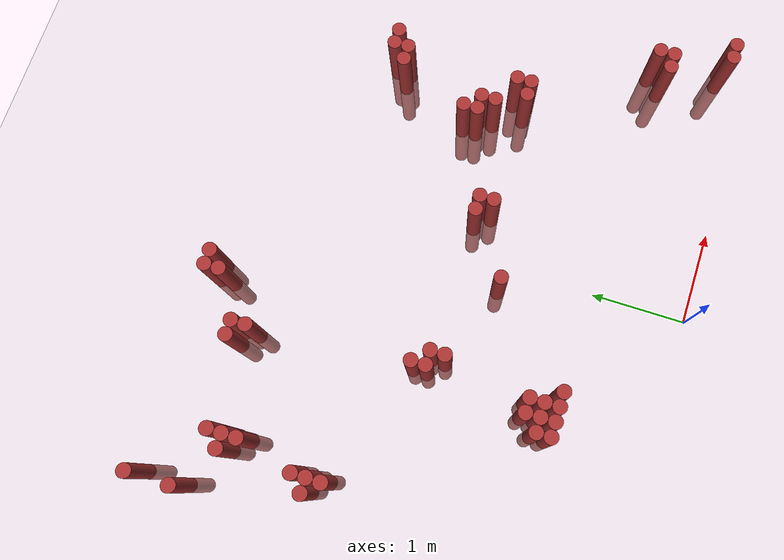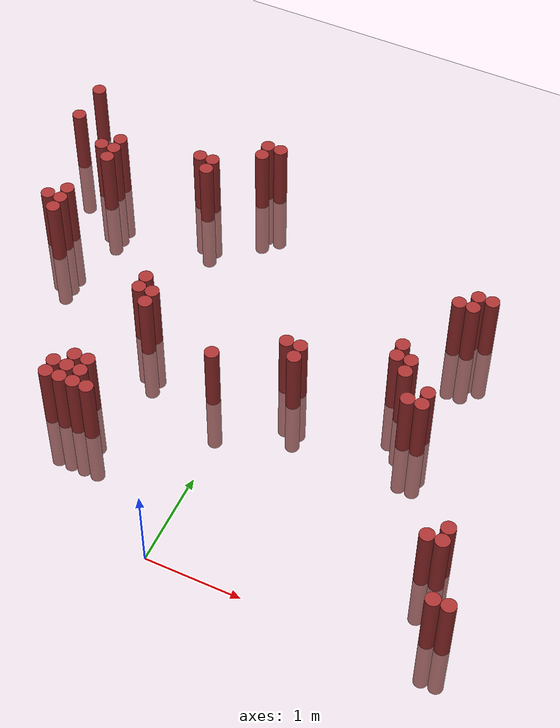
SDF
<sdf version="1.6">
 <world name="default">
  <model name="ground_plane">
   <static>1</static>
   <link name="link">
    <collision name="collision">
     <geometry><plane><normal>0 0 1</normal><size>100 100</size></plane></geometry>
     <surface><friction><ode><mu>100</mu><mu2>50</mu2></ode></friction></surface>
    </collision>
    <visual name="visual">
     <cast_shadows>0</cast_shadows>
     <geometry><plane><normal>0 0 1</normal><size>100 100</size></plane></geometry>
     <material>
      <script><uri>file://media/materials/scripts/gazebo.material</uri><name>Gazebo/Grey</name></script>
     </material>
    </visual>
   </link>
  </model>
  <model name="unit_cylinder_288">
   <static>1</static>
   <pose>-3.125000 4.375000 0.000000 0.000000 0.000000 0.000000</pose>
   <link name="link">
    <inertial>
     <mass>1</mass>
     <inertia><ixx>0.145833</ixx><ixy>0</ixy><ixz>0</ixz><iyy>0.145833</iyy><iyz>0</iyz><izz>0.125</izz></inertia>
    </inertial>
    <collision name="collision">
     <geometry><cylinder><radius>0.075000</radius><length>1.5</length></cylinder></geometry>
    </collision>
    <visual name="visual">
     <geometry><cylinder><radius>0.075000</radius><length>1.5</length></cylinder></geometry>
     <material>
      <ambient>0.648000 0.192000 0.192000 1</ambient>
      <diffuse>0.648000 0.192000 0.192000 1</diffuse>
     </material>
     <material>
      <script><name>Gazebo/Grey</name><uri>file://media/materials/scripts/gazebo.material</uri></script>
     </material>
    </visual>
   </link>
  </model>
  <model name="unit_cylinder_289">
   <static>1</static>
   <pose>-3.125000 4.825000 0.000000 0.000000 0.000000 0.000000</pose>
   <link name="link">
    <inertial>
     <mass>1</mass>
     <inertia><ixx>0.145833</ixx><ixy>0</ixy><ixz>0</ixz><iyy>0.145833</iyy><iyz>0</iyz><izz>0.125</izz></inertia>
    </inertial>
    <collision name="collision">
     <geometry><cylinder><radius>0.075000</radius><length>1.5</length></cylinder></geometry>
    </collision>
    <visual name="visual">
     <geometry><cylinder><radius>0.075000</radius><length>1.5</length></cylinder></geometry>
     <material>
      <ambient>0.648000 0.192000 0.192000 1</ambient>
      <diffuse>0.648000 0.192000 0.192000 1</diffuse>
     </material>
     <material>
      <script><name>Gazebo/Grey</name><uri>file://media/materials/scripts/gazebo.material</uri></script>
     </material>
    </visual>
   </link>
  </model>
  <model name="unit_cylinder_294">
   <static>1</static>
   <pose>-2.825000 3.175000 0.000000 0.000000 0.000000 0.000000</pose>
   <link name="link">
    <inertial>
     <mass>1</mass>
     <inertia><ixx>0.145833</ixx><ixy>0</ixy><ixz>0</ixz><iyy>0.145833</iyy><iyz>0</iyz><izz>0.125</izz></inertia>
    </inertial>
    <collision name="collision">
     <geometry><cylinder><radius>0.075000</radius><length>1.5</length></cylinder></geometry>
    </collision>
    <visual name="visual">
     <geometry><cylinder><radius>0.075000</radius><length>1.5</length></cylinder></geometry>
     <material>
      <ambient>0.648000 0.192000 0.192000 1</ambient>
      <diffuse>0.648000 0.192000 0.192000 1</diffuse>
     </material>
     <material>
      <script><name>Gazebo/Grey</name><uri>file://media/materials/scripts/gazebo.material</uri></script>
     </material>
    </visual>
   </link>
  </model>
  <model name="unit_cylinder_297">
   <static>1</static>
   <pose>-2.675000 3.025000 0.000000 0.000000 0.000000 0.000000</pose>
   <link name="link">
    <inertial>
     <mass>1</mass>
     <inertia><ixx>0.145833</ixx><ixy>0</ixy><ixz>0</ixz><iyy>0.145833</iyy><iyz>0</iyz><izz>0.125</izz></inertia>
    </inertial>
    <collision name="collision">
     <geometry><cylinder><radius>0.075000</radius><length>1.5</length></cylinder></geometry>
    </collision>
    <visual name="visual">
     <geometry><cylinder><radius>0.075000</radius><length>1.5</length></cylinder></geometry>
     <material>
      <ambient>0.648000 0.192000 0.192000 1</ambient>
      <diffuse>0.648000 0.192000 0.192000 1</diffuse>
     </material>
     <material>
      <script><name>Gazebo/Grey</name><uri>file://media/materials/scripts/gazebo.material</uri></script>
     </material>
    </visual>
   </link>
  </model>
  <model name="unit_cylinder_298">
   <static>1</static>
   <pose>-2.675000 3.175000 0.000000 0.000000 0.000000 0.000000</pose>
   <link name="link">
    <inertial>
     <mass>1</mass>
     <inertia><ixx>0.145833</ixx><ixy>0</ixy><ixz>0</ixz><iyy>0.145833</iyy><iyz>0</iyz><izz>0.125</izz></inertia>
    </inertial>
    <collision name="collision">
     <geometry><cylinder><radius>0.075000</radius><length>1.5</length></cylinder></geometry>
    </collision>
    <visual name="visual">
     <geometry><cylinder><radius>0.075000</radius><length>1.5</length></cylinder></geometry>
     <material>
      <ambient>0.648000 0.192000 0.192000 1</ambient>
      <diffuse>0.648000 0.192000 0.192000 1</diffuse>
     </material>
     <material>
      <script><name>Gazebo/Grey</name><uri>file://media/materials/scripts/gazebo.material</uri></script>
     </material>
    </visual>
   </link>
  </model>
  <model name="unit_cylinder_299">
   <static>1</static>
   <pose>-2.675000 3.325000 0.000000 0.000000 0.000000 0.000000</pose>
   <link name="link">
    <inertial>
     <mass>1</mass>
     <inertia><ixx>0.145833</ixx><ixy>0</ixy><ixz>0</ixz><iyy>0.145833</iyy><iyz>0</iyz><izz>0.125</izz></inertia>
    </inertial>
    <collision name="collision">
     <geometry><cylinder><radius>0.075000</radius><length>1.5</length></cylinder></geometry>
    </collision>
    <visual name="visual">
     <geometry><cylinder><radius>0.075000</radius><length>1.5</length></cylinder></geometry>
     <material>
      <ambient>0.648000 0.192000 0.192000 1</ambient>
      <diffuse>0.648000 0.192000 0.192000 1</diffuse>
     </material>
     <material>
      <script><name>Gazebo/Grey</name><uri>file://media/materials/scripts/gazebo.material</uri></script>
     </material>
    </visual>
   </link>
  </model>
  <model name="unit_cylinder_300">
   <static>1</static>
   <pose>-2.675000 4.075000 0.000000 0.000000 0.000000 0.000000</pose>
   <link name="link">
    <inertial>
     <mass>1</mass>
     <inertia><ixx>0.145833</ixx><ixy>0</ixy><ixz>0</ixz><iyy>0.145833</iyy><iyz>0</iyz><izz>0.125</izz></inertia>
    </inertial>
    <collision name="collision">
     <geometry><cylinder><radius>0.075000</radius><length>1.5</length></cylinder></geometry>
    </collision>
    <visual name="visual">
     <geometry><cylinder><radius>0.075000</radius><length>1.5</length></cylinder></geometry>
     <material>
      <ambient>0.648000 0.192000 0.192000 1</ambient>
      <diffuse>0.648000 0.192000 0.192000 1</diffuse>
     </material>
     <material>
      <script><name>Gazebo/Grey</name><uri>file://media/materials/scripts/gazebo.material</uri></script>
     </material>
    </visual>
   </link>
  </model>
  <model name="unit_cylinder_303">
   <static>1</static>
   <pose>-2.525000 3.925000 0.000000 0.000000 0.000000 0.000000</pose>
   <link name="link">
    <inertial>
     <mass>1</mass>
     <inertia><ixx>0.145833</ixx><ixy>0</ixy><ixz>0</ixz><iyy>0.145833</iyy><iyz>0</iyz><izz>0.125</izz></inertia>
    </inertial>
    <collision name="collision">
     <geometry><cylinder><radius>0.075000</radius><length>1.5</length></cylinder></geometry>
    </collision>
    <visual name="visual">
     <geometry><cylinder><radius>0.075000</radius><length>1.5</length></cylinder></geometry>
     <material>
      <ambient>0.648000 0.192000 0.192000 1</ambient>
      <diffuse>0.648000 0.192000 0.192000 1</diffuse>
     </material>
     <material>
      <script><name>Gazebo/Grey</name><uri>file://media/materials/scripts/gazebo.material</uri></script>
     </material>
    </visual>
   </link>
  </model>
  <model name="unit_cylinder_304">
   <static>1</static>
   <pose>-2.525000 4.075000 0.000000 0.000000 0.000000 0.000000</pose>
   <link name="link">
    <inertial>
     <mass>1</mass>
     <inertia><ixx>0.145833</ixx><ixy>0</ixy><ixz>0</ixz><iyy>0.145833</iyy><iyz>0</iyz><izz>0.125</izz></inertia>
    </inertial>
    <collision name="collision">
     <geometry><cylinder><radius>0.075000</radius><length>1.5</length></cylinder></geometry>
    </collision>
    <visual name="visual">
     <geometry><cylinder><radius>0.075000</radius><length>1.5</length></cylinder></geometry>
     <material>
      <ambient>0.648000 0.192000 0.192000 1</ambient>
      <diffuse>0.648000 0.192000 0.192000 1</diffuse>
     </material>
     <material>
      <script><name>Gazebo/Grey</name><uri>file://media/materials/scripts/gazebo.material</uri></script>
     </material>
    </visual>
   </link>
  </model>
  <model name="unit_cylinder_305">
   <static>1</static>
   <pose>-2.525000 4.225000 0.000000 0.000000 0.000000 0.000000</pose>
   <link name="link">
    <inertial>
     <mass>1</mass>
     <inertia><ixx>0.145833</ixx><ixy>0</ixy><ixz>0</ixz><iyy>0.145833</iyy><iyz>0</iyz><izz>0.125</izz></inertia>
    </inertial>
    <collision name="collision">
     <geometry><cylinder><radius>0.075000</radius><length>1.5</length></cylinder></geometry>
    </collision>
    <visual name="visual">
     <geometry><cylinder><radius>0.075000</radius><length>1.5</length></cylinder></geometry>
     <material>
      <ambient>0.648000 0.192000 0.192000 1</ambient>
      <diffuse>0.648000 0.192000 0.192000 1</diffuse>
     </material>
     <material>
      <script><name>Gazebo/Grey</name><uri>file://media/materials/scripts/gazebo.material</uri></script>
     </material>
    </visual>
   </link>
  </model>
  <model name="unit_cylinder_314">
   <static>1</static>
   <pose>-1.625000 1.075000 0.000000 0.000000 0.000000 0.000000</pose>
   <link name="link">
    <inertial>
     <mass>1</mass>
     <inertia><ixx>0.145833</ixx><ixy>0</ixy><ixz>0</ixz><iyy>0.145833</iyy><iyz>0</iyz><izz>0.125</izz></inertia>
    </inertial>
    <collision name="collision">
     <geometry><cylinder><radius>0.075000</radius><length>1.5</length></cylinder></geometry>
    </collision>
    <visual name="visual">
     <geometry><cylinder><radius>0.075000</radius><length>1.5</length></cylinder></geometry>
     <material>
      <ambient>0.648000 0.192000 0.192000 1</ambient>
      <diffuse>0.648000 0.192000 0.192000 1</diffuse>
     </material>
     <material>
      <script><name>Gazebo/Grey</name><uri>file://media/materials/scripts/gazebo.material</uri></script>
     </material>
    </visual>
   </link>
  </model>
  <model name="unit_cylinder_315">
   <static>1</static>
   <pose>-1.625000 1.225000 0.000000 0.000000 0.000000 0.000000</pose>
   <link name="link">
    <inertial>
     <mass>1</mass>
     <inertia><ixx>0.145833</ixx><ixy>0</ixy><ixz>0</ixz><iyy>0.145833</iyy><iyz>0</iyz><izz>0.125</izz></inertia>
    </inertial>
    <collision name="collision">
     <geometry><cylinder><radius>0.075000</radius><length>1.5</length></cylinder></geometry>
    </collision>
    <visual name="visual">
     <geometry><cylinder><radius>0.075000</radius><length>1.5</length></cylinder></geometry>
     <material>
      <ambient>0.648000 0.192000 0.192000 1</ambient>
      <diffuse>0.648000 0.192000 0.192000 1</diffuse>
     </material>
     <material>
      <script><name>Gazebo/Grey</name><uri>file://media/materials/scripts/gazebo.material</uri></script>
     </material>
    </visual>
   </link>
  </model>
  <model name="unit_cylinder_316">
   <static>1</static>
   <pose>-1.625000 4.375000 0.000000 0.000000 0.000000 0.000000</pose>
   <link name="link">
    <inertial>
     <mass>1</mass>
     <inertia><ixx>0.145833</ixx><ixy>0</ixy><ixz>0</ixz><iyy>0.145833</iyy><iyz>0</iyz><izz>0.125</izz></inertia>
    </inertial>
    <collision name="collision">
     <geometry><cylinder><radius>0.075000</radius><length>1.5</length></cylinder></geometry>
    </collision>
    <visual name="visual">
     <geometry><cylinder><radius>0.075000</radius><length>1.5</length></cylinder></geometry>
     <material>
      <ambient>0.648000 0.192000 0.192000 1</ambient>
      <diffuse>0.648000 0.192000 0.192000 1</diffuse>
     </material>
     <material>
      <script><name>Gazebo/Grey</name><uri>file://media/materials/scripts/gazebo.material</uri></script>
     </material>
    </visual>
   </link>
  </model>
  <model name="unit_cylinder_319">
   <static>1</static>
   <pose>-1.475000 1.075000 0.000000 0.000000 0.000000 0.000000</pose>
   <link name="link">
    <inertial>
     <mass>1</mass>
     <inertia><ixx>0.145833</ixx><ixy>0</ixy><ixz>0</ixz><iyy>0.145833</iyy><iyz>0</iyz><izz>0.125</izz></inertia>
    </inertial>
    <collision name="collision">
     <geometry><cylinder><radius>0.075000</radius><length>1.5</length></cylinder></geometry>
    </collision>
    <visual name="visual">
     <geometry><cylinder><radius>0.075000</radius><length>1.5</length></cylinder></geometry>
     <material>
      <ambient>0.648000 0.192000 0.192000 1</ambient>
      <diffuse>0.648000 0.192000 0.192000 1</diffuse>
     </material>
     <material>
      <script><name>Gazebo/Grey</name><uri>file://media/materials/scripts/gazebo.material</uri></script>
     </material>
    </visual>
   </link>
  </model>
  <model name="unit_cylinder_320">
   <static>1</static>
   <pose>-1.475000 1.225000 0.000000 0.000000 0.000000 0.000000</pose>
   <link name="link">
    <inertial>
     <mass>1</mass>
     <inertia><ixx>0.145833</ixx><ixy>0</ixy><ixz>0</ixz><iyy>0.145833</iyy><iyz>0</iyz><izz>0.125</izz></inertia>
    </inertial>
    <collision name="collision">
     <geometry><cylinder><radius>0.075000</radius><length>1.5</length></cylinder></geometry>
    </collision>
    <visual name="visual">
     <geometry><cylinder><radius>0.075000</radius><length>1.5</length></cylinder></geometry>
     <material>
      <ambient>0.648000 0.192000 0.192000 1</ambient>
      <diffuse>0.648000 0.192000 0.192000 1</diffuse>
     </material>
     <material>
      <script><name>Gazebo/Grey</name><uri>file://media/materials/scripts/gazebo.material</uri></script>
     </material>
    </visual>
   </link>
  </model>
  <model name="unit_cylinder_321">
   <static>1</static>
   <pose>-1.475000 1.375000 0.000000 0.000000 0.000000 0.000000</pose>
   <link name="link">
    <inertial>
     <mass>1</mass>
     <inertia><ixx>0.145833</ixx><ixy>0</ixy><ixz>0</ixz><iyy>0.145833</iyy><iyz>0</iyz><izz>0.125</izz></inertia>
    </inertial>
    <collision name="collision">
     <geometry><cylinder><radius>0.075000</radius><length>1.5</length></cylinder></geometry>
    </collision>
    <visual name="visual">
     <geometry><cylinder><radius>0.075000</radius><length>1.5</length></cylinder></geometry>
     <material>
      <ambient>0.648000 0.192000 0.192000 1</ambient>
      <diffuse>0.648000 0.192000 0.192000 1</diffuse>
     </material>
     <material>
      <script><name>Gazebo/Grey</name><uri>file://media/materials/scripts/gazebo.material</uri></script>
     </material>
    </visual>
   </link>
  </model>
  <model name="unit_cylinder_322">
   <static>1</static>
   <pose>-1.475000 4.225000 0.000000 0.000000 0.000000 0.000000</pose>
   <link name="link">
    <inertial>
     <mass>1</mass>
     <inertia><ixx>0.145833</ixx><ixy>0</ixy><ixz>0</ixz><iyy>0.145833</iyy><iyz>0</iyz><izz>0.125</izz></inertia>
    </inertial>
    <collision name="collision">
     <geometry><cylinder><radius>0.075000</radius><length>1.5</length></cylinder></geometry>
    </collision>
    <visual name="visual">
     <geometry><cylinder><radius>0.075000</radius><length>1.5</length></cylinder></geometry>
     <material>
      <ambient>0.648000 0.192000 0.192000 1</ambient>
      <diffuse>0.648000 0.192000 0.192000 1</diffuse>
     </material>
     <material>
      <script><name>Gazebo/Grey</name><uri>file://media/materials/scripts/gazebo.material</uri></script>
     </material>
    </visual>
   </link>
  </model>
  <model name="unit_cylinder_323">
   <static>1</static>
   <pose>-1.475000 4.375000 0.000000 0.000000 0.000000 0.000000</pose>
   <link name="link">
    <inertial>
     <mass>1</mass>
     <inertia><ixx>0.145833</ixx><ixy>0</ixy><ixz>0</ixz><iyy>0.145833</iyy><iyz>0</iyz><izz>0.125</izz></inertia>
    </inertial>
    <collision name="collision">
     <geometry><cylinder><radius>0.075000</radius><length>1.5</length></cylinder></geometry>
    </collision>
    <visual name="visual">
     <geometry><cylinder><radius>0.075000</radius><length>1.5</length></cylinder></geometry>
     <material>
      <ambient>0.648000 0.192000 0.192000 1</ambient>
      <diffuse>0.648000 0.192000 0.192000 1</diffuse>
     </material>
     <material>
      <script><name>Gazebo/Grey</name><uri>file://media/materials/scripts/gazebo.material</uri></script>
     </material>
    </visual>
   </link>
  </model>
  <model name="unit_cylinder_325">
   <static>1</static>
   <pose>-1.325000 1.075000 0.000000 0.000000 0.000000 0.000000</pose>
   <link name="link">
    <inertial>
     <mass>1</mass>
     <inertia><ixx>0.145833</ixx><ixy>0</ixy><ixz>0</ixz><iyy>0.145833</iyy><iyz>0</iyz><izz>0.125</izz></inertia>
    </inertial>
    <collision name="collision">
     <geometry><cylinder><radius>0.075000</radius><length>1.5</length></cylinder></geometry>
    </collision>
    <visual name="visual">
     <geometry><cylinder><radius>0.075000</radius><length>1.5</length></cylinder></geometry>
     <material>
      <ambient>0.648000 0.192000 0.192000 1</ambient>
      <diffuse>0.648000 0.192000 0.192000 1</diffuse>
     </material>
     <material>
      <script><name>Gazebo/Grey</name><uri>file://media/materials/scripts/gazebo.material</uri></script>
     </material>
    </visual>
   </link>
  </model>
  <model name="unit_cylinder_326">
   <static>1</static>
   <pose>-1.325000 1.225000 0.000000 0.000000 0.000000 0.000000</pose>
   <link name="link">
    <inertial>
     <mass>1</mass>
     <inertia><ixx>0.145833</ixx><ixy>0</ixy><ixz>0</ixz><iyy>0.145833</iyy><iyz>0</iyz><izz>0.125</izz></inertia>
    </inertial>
    <collision name="collision">
     <geometry><cylinder><radius>0.075000</radius><length>1.5</length></cylinder></geometry>
    </collision>
    <visual name="visual">
     <geometry><cylinder><radius>0.075000</radius><length>1.5</length></cylinder></geometry>
     <material>
      <ambient>0.648000 0.192000 0.192000 1</ambient>
      <diffuse>0.648000 0.192000 0.192000 1</diffuse>
     </material>
     <material>
      <script><name>Gazebo/Grey</name><uri>file://media/materials/scripts/gazebo.material</uri></script>
     </material>
    </visual>
   </link>
  </model>
  <model name="unit_cylinder_327">
   <static>1</static>
   <pose>-1.325000 1.375000 0.000000 0.000000 0.000000 0.000000</pose>
   <link name="link">
    <inertial>
     <mass>1</mass>
     <inertia><ixx>0.145833</ixx><ixy>0</ixy><ixz>0</ixz><iyy>0.145833</iyy><iyz>0</iyz><izz>0.125</izz></inertia>
    </inertial>
    <collision name="collision">
     <geometry><cylinder><radius>0.075000</radius><length>1.5</length></cylinder></geometry>
    </collision>
    <visual name="visual">
     <geometry><cylinder><radius>0.075000</radius><length>1.5</length></cylinder></geometry>
     <material>
      <ambient>0.648000 0.192000 0.192000 1</ambient>
      <diffuse>0.648000 0.192000 0.192000 1</diffuse>
     </material>
     <material>
      <script><name>Gazebo/Grey</name><uri>file://media/materials/scripts/gazebo.material</uri></script>
     </material>
    </visual>
   </link>
  </model>
  <model name="unit_cylinder_328">
   <static>1</static>
   <pose>-1.325000 2.425000 0.000000 0.000000 0.000000 0.000000</pose>
   <link name="link">
    <inertial>
     <mass>1</mass>
     <inertia><ixx>0.145833</ixx><ixy>0</ixy><ixz>0</ixz><iyy>0.145833</iyy><iyz>0</iyz><izz>0.125</izz></inertia>
    </inertial>
    <collision name="collision">
     <geometry><cylinder><radius>0.075000</radius><length>1.5</length></cylinder></geometry>
    </collision>
    <visual name="visual">
     <geometry><cylinder><radius>0.075000</radius><length>1.5</length></cylinder></geometry>
     <material>
      <ambient>0.648000 0.192000 0.192000 1</ambient>
      <diffuse>0.648000 0.192000 0.192000 1</diffuse>
     </material>
     <material>
      <script><name>Gazebo/Grey</name><uri>file://media/materials/scripts/gazebo.material</uri></script>
     </material>
    </visual>
   </link>
  </model>
  <model name="unit_cylinder_329">
   <static>1</static>
   <pose>-1.325000 2.575000 0.000000 0.000000 0.000000 0.000000</pose>
   <link name="link">
    <inertial>
     <mass>1</mass>
     <inertia><ixx>0.145833</ixx><ixy>0</ixy><ixz>0</ixz><iyy>0.145833</iyy><iyz>0</iyz><izz>0.125</izz></inertia>
    </inertial>
    <collision name="collision">
     <geometry><cylinder><radius>0.075000</radius><length>1.5</length></cylinder></geometry>
    </collision>
    <visual name="visual">
     <geometry><cylinder><radius>0.075000</radius><length>1.5</length></cylinder></geometry>
     <material>
      <ambient>0.648000 0.192000 0.192000 1</ambient>
      <diffuse>0.648000 0.192000 0.192000 1</diffuse>
     </material>
     <material>
      <script><name>Gazebo/Grey</name><uri>file://media/materials/scripts/gazebo.material</uri></script>
     </material>
    </visual>
   </link>
  </model>
  <model name="unit_cylinder_330">
   <static>1</static>
   <pose>-1.175000 1.075000 0.000000 0.000000 0.000000 0.000000</pose>
   <link name="link">
    <inertial>
     <mass>1</mass>
     <inertia><ixx>0.145833</ixx><ixy>0</ixy><ixz>0</ixz><iyy>0.145833</iyy><iyz>0</iyz><izz>0.125</izz></inertia>
    </inertial>
    <collision name="collision">
     <geometry><cylinder><radius>0.075000</radius><length>1.5</length></cylinder></geometry>
    </collision>
    <visual name="visual">
     <geometry><cylinder><radius>0.075000</radius><length>1.5</length></cylinder></geometry>
     <material>
      <ambient>0.648000 0.192000 0.192000 1</ambient>
      <diffuse>0.648000 0.192000 0.192000 1</diffuse>
     </material>
     <material>
      <script><name>Gazebo/Grey</name><uri>file://media/materials/scripts/gazebo.material</uri></script>
     </material>
    </visual>
   </link>
  </model>
  <model name="unit_cylinder_331">
   <static>1</static>
   <pose>-1.175000 2.275000 0.000000 0.000000 0.000000 0.000000</pose>
   <link name="link">
    <inertial>
     <mass>1</mass>
     <inertia><ixx>0.145833</ixx><ixy>0</ixy><ixz>0</ixz><iyy>0.145833</iyy><iyz>0</iyz><izz>0.125</izz></inertia>
    </inertial>
    <collision name="collision">
     <geometry><cylinder><radius>0.075000</radius><length>1.5</length></cylinder></geometry>
    </collision>
    <visual name="visual">
     <geometry><cylinder><radius>0.075000</radius><length>1.5</length></cylinder></geometry>
     <material>
      <ambient>0.648000 0.192000 0.192000 1</ambient>
      <diffuse>0.648000 0.192000 0.192000 1</diffuse>
     </material>
     <material>
      <script><name>Gazebo/Grey</name><uri>file://media/materials/scripts/gazebo.material</uri></script>
     </material>
    </visual>
   </link>
  </model>
  <model name="unit_cylinder_332">
   <static>1</static>
   <pose>-1.175000 2.425000 0.000000 0.000000 0.000000 0.000000</pose>
   <link name="link">
    <inertial>
     <mass>1</mass>
     <inertia><ixx>0.145833</ixx><ixy>0</ixy><ixz>0</ixz><iyy>0.145833</iyy><iyz>0</iyz><izz>0.125</izz></inertia>
    </inertial>
    <collision name="collision">
     <geometry><cylinder><radius>0.075000</radius><length>1.5</length></cylinder></geometry>
    </collision>
    <visual name="visual">
     <geometry><cylinder><radius>0.075000</radius><length>1.5</length></cylinder></geometry>
     <material>
      <ambient>0.648000 0.192000 0.192000 1</ambient>
      <diffuse>0.648000 0.192000 0.192000 1</diffuse>
     </material>
     <material>
      <script><name>Gazebo/Grey</name><uri>file://media/materials/scripts/gazebo.material</uri></script>
     </material>
    </visual>
   </link>
  </model>
  <model name="unit_cylinder_333">
   <static>1</static>
   <pose>-1.025000 4.675000 0.000000 0.000000 0.000000 0.000000</pose>
   <link name="link">
    <inertial>
     <mass>1</mass>
     <inertia><ixx>0.145833</ixx><ixy>0</ixy><ixz>0</ixz><iyy>0.145833</iyy><iyz>0</iyz><izz>0.125</izz></inertia>
    </inertial>
    <collision name="collision">
     <geometry><cylinder><radius>0.075000</radius><length>1.5</length></cylinder></geometry>
    </collision>
    <visual name="visual">
     <geometry><cylinder><radius>0.075000</radius><length>1.5</length></cylinder></geometry>
     <material>
      <ambient>0.648000 0.192000 0.192000 1</ambient>
      <diffuse>0.648000 0.192000 0.192000 1</diffuse>
     </material>
     <material>
      <script><name>Gazebo/Grey</name><uri>file://media/materials/scripts/gazebo.material</uri></script>
     </material>
    </visual>
   </link>
  </model>
  <model name="unit_cylinder_334">
   <static>1</static>
   <pose>-1.025000 4.825000 0.000000 0.000000 0.000000 0.000000</pose>
   <link name="link">
    <inertial>
     <mass>1</mass>
     <inertia><ixx>0.145833</ixx><ixy>0</ixy><ixz>0</ixz><iyy>0.145833</iyy><iyz>0</iyz><izz>0.125</izz></inertia>
    </inertial>
    <collision name="collision">
     <geometry><cylinder><radius>0.075000</radius><length>1.5</length></cylinder></geometry>
    </collision>
    <visual name="visual">
     <geometry><cylinder><radius>0.075000</radius><length>1.5</length></cylinder></geometry>
     <material>
      <ambient>0.648000 0.192000 0.192000 1</ambient>
      <diffuse>0.648000 0.192000 0.192000 1</diffuse>
     </material>
     <material>
      <script><name>Gazebo/Grey</name><uri>file://media/materials/scripts/gazebo.material</uri></script>
     </material>
    </visual>
   </link>
  </model>
  <model name="unit_cylinder_335">
   <static>1</static>
   <pose>-0.875000 4.825000 0.000000 0.000000 0.000000 0.000000</pose>
   <link name="link">
    <inertial>
     <mass>1</mass>
     <inertia><ixx>0.145833</ixx><ixy>0</ixy><ixz>0</ixz><iyy>0.145833</iyy><iyz>0</iyz><izz>0.125</izz></inertia>
    </inertial>
    <collision name="collision">
     <geometry><cylinder><radius>0.075000</radius><length>1.5</length></cylinder></geometry>
    </collision>
    <visual name="visual">
     <geometry><cylinder><radius>0.075000</radius><length>1.5</length></cylinder></geometry>
     <material>
      <ambient>0.648000 0.192000 0.192000 1</ambient>
      <diffuse>0.648000 0.192000 0.192000 1</diffuse>
     </material>
     <material>
      <script><name>Gazebo/Grey</name><uri>file://media/materials/scripts/gazebo.material</uri></script>
     </material>
    </visual>
   </link>
  </model>
  <model name="unit_cylinder_336">
   <static>1</static>
   <pose>-0.275000 1.975000 0.000000 0.000000 0.000000 0.000000</pose>
   <link name="link">
    <inertial>
     <mass>1</mass>
     <inertia><ixx>0.145833</ixx><ixy>0</ixy><ixz>0</ixz><iyy>0.145833</iyy><iyz>0</iyz><izz>0.125</izz></inertia>
    </inertial>
    <collision name="collision">
     <geometry><cylinder><radius>0.075000</radius><length>1.5</length></cylinder></geometry>
    </collision>
    <visual name="visual">
     <geometry><cylinder><radius>0.075000</radius><length>1.5</length></cylinder></geometry>
     <material>
      <ambient>0.648000 0.192000 0.192000 1</ambient>
      <diffuse>0.648000 0.192000 0.192000 1</diffuse>
     </material>
     <material>
      <script><name>Gazebo/Grey</name><uri>file://media/materials/scripts/gazebo.material</uri></script>
     </material>
    </visual>
   </link>
  </model>
  <model name="unit_cylinder_337">
   <static>1</static>
   <pose>0.325000 2.425000 0.000000 0.000000 0.000000 0.000000</pose>
   <link name="link">
    <inertial>
     <mass>1</mass>
     <inertia><ixx>0.145833</ixx><ixy>0</ixy><ixz>0</ixz><iyy>0.145833</iyy><iyz>0</iyz><izz>0.125</izz></inertia>
    </inertial>
    <collision name="collision">
     <geometry><cylinder><radius>0.075000</radius><length>1.5</length></cylinder></geometry>
    </collision>
    <visual name="visual">
     <geometry><cylinder><radius>0.075000</radius><length>1.5</length></cylinder></geometry>
     <material>
      <ambient>0.648000 0.192000 0.192000 1</ambient>
      <diffuse>0.648000 0.192000 0.192000 1</diffuse>
     </material>
     <material>
      <script><name>Gazebo/Grey</name><uri>file://media/materials/scripts/gazebo.material</uri></script>
     </material>
    </visual>
   </link>
  </model>
  <model name="unit_cylinder_338">
   <static>1</static>
   <pose>0.475000 2.275000 0.000000 0.000000 0.000000 0.000000</pose>
   <link name="link">
    <inertial>
     <mass>1</mass>
     <inertia><ixx>0.145833</ixx><ixy>0</ixy><ixz>0</ixz><iyy>0.145833</iyy><iyz>0</iyz><izz>0.125</izz></inertia>
    </inertial>
    <collision name="collision">
     <geometry><cylinder><radius>0.075000</radius><length>1.5</length></cylinder></geometry>
    </collision>
    <visual name="visual">
     <geometry><cylinder><radius>0.075000</radius><length>1.5</length></cylinder></geometry>
     <material>
      <ambient>0.648000 0.192000 0.192000 1</ambient>
      <diffuse>0.648000 0.192000 0.192000 1</diffuse>
     </material>
     <material>
      <script><name>Gazebo/Grey</name><uri>file://media/materials/scripts/gazebo.material</uri></script>
     </material>
    </visual>
   </link>
  </model>
  <model name="unit_cylinder_339">
   <static>1</static>
   <pose>0.475000 2.425000 0.000000 0.000000 0.000000 0.000000</pose>
   <link name="link">
    <inertial>
     <mass>1</mass>
     <inertia><ixx>0.145833</ixx><ixy>0</ixy><ixz>0</ixz><iyy>0.145833</iyy><iyz>0</iyz><izz>0.125</izz></inertia>
    </inertial>
    <collision name="collision">
     <geometry><cylinder><radius>0.075000</radius><length>1.5</length></cylinder></geometry>
    </collision>
    <visual name="visual">
     <geometry><cylinder><radius>0.075000</radius><length>1.5</length></cylinder></geometry>
     <material>
      <ambient>0.648000 0.192000 0.192000 1</ambient>
      <diffuse>0.648000 0.192000 0.192000 1</diffuse>
     </material>
     <material>
      <script><name>Gazebo/Grey</name><uri>file://media/materials/scripts/gazebo.material</uri></script>
     </material>
    </visual>
   </link>
  </model>
  <model name="unit_cylinder_340">
   <static>1</static>
   <pose>1.375000 2.725000 0.000000 0.000000 0.000000 0.000000</pose>
   <link name="link">
    <inertial>
     <mass>1</mass>
     <inertia><ixx>0.145833</ixx><ixy>0</ixy><ixz>0</ixz><iyy>0.145833</iyy><iyz>0</iyz><izz>0.125</izz></inertia>
    </inertial>
    <collision name="collision">
     <geometry><cylinder><radius>0.075000</radius><length>1.5</length></cylinder></geometry>
    </collision>
    <visual name="visual">
     <geometry><cylinder><radius>0.075000</radius><length>1.5</length></cylinder></geometry>
     <material>
      <ambient>0.648000 0.192000 0.192000 1</ambient>
      <diffuse>0.648000 0.192000 0.192000 1</diffuse>
     </material>
     <material>
      <script><name>Gazebo/Grey</name><uri>file://media/materials/scripts/gazebo.material</uri></script>
     </material>
    </visual>
   </link>
  </model>
  <model name="unit_cylinder_341">
   <static>1</static>
   <pose>1.375000 2.875000 0.000000 0.000000 0.000000 0.000000</pose>
   <link name="link">
    <inertial>
     <mass>1</mass>
     <inertia><ixx>0.145833</ixx><ixy>0</ixy><ixz>0</ixz><iyy>0.145833</iyy><iyz>0</iyz><izz>0.125</izz></inertia>
    </inertial>
    <collision name="collision">
     <geometry><cylinder><radius>0.075000</radius><length>1.5</length></cylinder></geometry>
    </collision>
    <visual name="visual">
     <geometry><cylinder><radius>0.075000</radius><length>1.5</length></cylinder></geometry>
     <material>
      <ambient>0.648000 0.192000 0.192000 1</ambient>
      <diffuse>0.648000 0.192000 0.192000 1</diffuse>
     </material>
     <material>
      <script><name>Gazebo/Grey</name><uri>file://media/materials/scripts/gazebo.material</uri></script>
     </material>
    </visual>
   </link>
  </model>
  <model name="unit_cylinder_342">
   <static>1</static>
   <pose>1.525000 2.575000 0.000000 0.000000 0.000000 0.000000</pose>
   <link name="link">
    <inertial>
     <mass>1</mass>
     <inertia><ixx>0.145833</ixx><ixy>0</ixy><ixz>0</ixz><iyy>0.145833</iyy><iyz>0</iyz><izz>0.125</izz></inertia>
    </inertial>
    <collision name="collision">
     <geometry><cylinder><radius>0.075000</radius><length>1.5</length></cylinder></geometry>
    </collision>
    <visual name="visual">
     <geometry><cylinder><radius>0.075000</radius><length>1.5</length></cylinder></geometry>
     <material>
      <ambient>0.648000 0.192000 0.192000 1</ambient>
      <diffuse>0.648000 0.192000 0.192000 1</diffuse>
     </material>
     <material>
      <script><name>Gazebo/Grey</name><uri>file://media/materials/scripts/gazebo.material</uri></script>
     </material>
    </visual>
   </link>
  </model>
  <model name="unit_cylinder_343">
   <static>1</static>
   <pose>1.525000 2.725000 0.000000 0.000000 0.000000 0.000000</pose>
   <link name="link">
    <inertial>
     <mass>1</mass>
     <inertia><ixx>0.145833</ixx><ixy>0</ixy><ixz>0</ixz><iyy>0.145833</iyy><iyz>0</iyz><izz>0.125</izz></inertia>
    </inertial>
    <collision name="collision">
     <geometry><cylinder><radius>0.075000</radius><length>1.5</length></cylinder></geometry>
    </collision>
    <visual name="visual">
     <geometry><cylinder><radius>0.075000</radius><length>1.5</length></cylinder></geometry>
     <material>
      <ambient>0.648000 0.192000 0.192000 1</ambient>
      <diffuse>0.648000 0.192000 0.192000 1</diffuse>
     </material>
     <material>
      <script><name>Gazebo/Grey</name><uri>file://media/materials/scripts/gazebo.material</uri></script>
     </material>
    </visual>
   </link>
  </model>
  <model name="unit_cylinder_344">
   <static>1</static>
   <pose>1.675000 2.275000 0.000000 0.000000 0.000000 0.000000</pose>
   <link name="link">
    <inertial>
     <mass>1</mass>
     <inertia><ixx>0.145833</ixx><ixy>0</ixy><ixz>0</ixz><iyy>0.145833</iyy><iyz>0</iyz><izz>0.125</izz></inertia>
    </inertial>
    <collision name="collision">
     <geometry><cylinder><radius>0.075000</radius><length>1.5</length></cylinder></geometry>
    </collision>
    <visual name="visual">
     <geometry><cylinder><radius>0.075000</radius><length>1.5</length></cylinder></geometry>
     <material>
      <ambient>0.648000 0.192000 0.192000 1</ambient>
      <diffuse>0.648000 0.192000 0.192000 1</diffuse>
     </material>
     <material>
      <script><name>Gazebo/Grey</name><uri>file://media/materials/scripts/gazebo.material</uri></script>
     </material>
    </visual>
   </link>
  </model>
  <model name="unit_cylinder_345">
   <static>1</static>
   <pose>1.675000 3.625000 0.000000 0.000000 0.000000 0.000000</pose>
   <link name="link">
    <inertial>
     <mass>1</mass>
     <inertia><ixx>0.145833</ixx><ixy>0</ixy><ixz>0</ixz><iyy>0.145833</iyy><iyz>0</iyz><izz>0.125</izz></inertia>
    </inertial>
    <collision name="collision">
     <geometry><cylinder><radius>0.075000</radius><length>1.5</length></cylinder></geometry>
    </collision>
    <visual name="visual">
     <geometry><cylinder><radius>0.075000</radius><length>1.5</length></cylinder></geometry>
     <material>
      <ambient>0.648000 0.192000 0.192000 1</ambient>
      <diffuse>0.648000 0.192000 0.192000 1</diffuse>
     </material>
     <material>
      <script><name>Gazebo/Grey</name><uri>file://media/materials/scripts/gazebo.material</uri></script>
     </material>
    </visual>
   </link>
  </model>
  <model name="unit_cylinder_346">
   <static>1</static>
   <pose>1.825000 2.275000 0.000000 0.000000 0.000000 0.000000</pose>
   <link name="link">
    <inertial>
     <mass>1</mass>
     <inertia><ixx>0.145833</ixx><ixy>0</ixy><ixz>0</ixz><iyy>0.145833</iyy><iyz>0</iyz><izz>0.125</izz></inertia>
    </inertial>
    <collision name="collision">
     <geometry><cylinder><radius>0.075000</radius><length>1.5</length></cylinder></geometry>
    </collision>
    <visual name="visual">
     <geometry><cylinder><radius>0.075000</radius><length>1.5</length></cylinder></geometry>
     <material>
      <ambient>0.648000 0.192000 0.192000 1</ambient>
      <diffuse>0.648000 0.192000 0.192000 1</diffuse>
     </material>
     <material>
      <script><name>Gazebo/Grey</name><uri>file://media/materials/scripts/gazebo.material</uri></script>
     </material>
    </visual>
   </link>
  </model>
  <model name="unit_cylinder_347">
   <static>1</static>
   <pose>1.825000 2.425000 0.000000 0.000000 0.000000 0.000000</pose>
   <link name="link">
    <inertial>
     <mass>1</mass>
     <inertia><ixx>0.145833</ixx><ixy>0</ixy><ixz>0</ixz><iyy>0.145833</iyy><iyz>0</iyz><izz>0.125</izz></inertia>
    </inertial>
    <collision name="collision">
     <geometry><cylinder><radius>0.075000</radius><length>1.5</length></cylinder></geometry>
    </collision>
    <visual name="visual">
     <geometry><cylinder><radius>0.075000</radius><length>1.5</length></cylinder></geometry>
     <material>
      <ambient>0.648000 0.192000 0.192000 1</ambient>
      <diffuse>0.648000 0.192000 0.192000 1</diffuse>
     </material>
     <material>
      <script><name>Gazebo/Grey</name><uri>file://media/materials/scripts/gazebo.material</uri></script>
     </material>
    </visual>
   </link>
  </model>
  <model name="unit_cylinder_348">
   <static>1</static>
   <pose>1.825000 3.625000 0.000000 0.000000 0.000000 0.000000</pose>
   <link name="link">
    <inertial>
     <mass>1</mass>
     <inertia><ixx>0.145833</ixx><ixy>0</ixy><ixz>0</ixz><iyy>0.145833</iyy><iyz>0</iyz><izz>0.125</izz></inertia>
    </inertial>
    <collision name="collision">
     <geometry><cylinder><radius>0.075000</radius><length>1.5</length></cylinder></geometry>
    </collision>
    <visual name="visual">
     <geometry><cylinder><radius>0.075000</radius><length>1.5</length></cylinder></geometry>
     <material>
      <ambient>0.648000 0.192000 0.192000 1</ambient>
      <diffuse>0.648000 0.192000 0.192000 1</diffuse>
     </material>
     <material>
      <script><name>Gazebo/Grey</name><uri>file://media/materials/scripts/gazebo.material</uri></script>
     </material>
    </visual>
   </link>
  </model>
  <model name="unit_cylinder_349">
   <static>1</static>
   <pose>1.825000 3.775000 0.000000 0.000000 0.000000 0.000000</pose>
   <link name="link">
    <inertial>
     <mass>1</mass>
     <inertia><ixx>0.145833</ixx><ixy>0</ixy><ixz>0</ixz><iyy>0.145833</iyy><iyz>0</iyz><izz>0.125</izz></inertia>
    </inertial>
    <collision name="collision">
     <geometry><cylinder><radius>0.075000</radius><length>1.5</length></cylinder></geometry>
    </collision>
    <visual name="visual">
     <geometry><cylinder><radius>0.075000</radius><length>1.5</length></cylinder></geometry>
     <material>
      <ambient>0.648000 0.192000 0.192000 1</ambient>
      <diffuse>0.648000 0.192000 0.192000 1</diffuse>
     </material>
     <material>
      <script><name>Gazebo/Grey</name><uri>file://media/materials/scripts/gazebo.material</uri></script>
     </material>
    </visual>
   </link>
  </model>
  <model name="unit_cylinder_350">
   <static>1</static>
   <pose>1.975000 3.775000 0.000000 0.000000 0.000000 0.000000</pose>
   <link name="link">
    <inertial>
     <mass>1</mass>
     <inertia><ixx>0.145833</ixx><ixy>0</ixy><ixz>0</ixz><iyy>0.145833</iyy><iyz>0</iyz><izz>0.125</izz></inertia>
    </inertial>
    <collision name="collision">
     <geometry><cylinder><radius>0.075000</radius><length>1.5</length></cylinder></geometry>
    </collision>
    <visual name="visual">
     <geometry><cylinder><radius>0.075000</radius><length>1.5</length></cylinder></geometry>
     <material>
      <ambient>0.648000 0.192000 0.192000 1</ambient>
      <diffuse>0.648000 0.192000 0.192000 1</diffuse>
     </material>
     <material>
      <script><name>Gazebo/Grey</name><uri>file://media/materials/scripts/gazebo.material</uri></script>
     </material>
    </visual>
   </link>
  </model>
  <model name="unit_cylinder_351">
   <static>1</static>
   <pose>2.425000 0.925000 0.000000 0.000000 0.000000 0.000000</pose>
   <link name="link">
    <inertial>
     <mass>1</mass>
     <inertia><ixx>0.145833</ixx><ixy>0</ixy><ixz>0</ixz><iyy>0.145833</iyy><iyz>0</iyz><izz>0.125</izz></inertia>
    </inertial>
    <collision name="collision">
     <geometry><cylinder><radius>0.075000</radius><length>1.5</length></cylinder></geometry>
    </collision>
    <visual name="visual">
     <geometry><cylinder><radius>0.075000</radius><length>1.5</length></cylinder></geometry>
     <material>
      <ambient>0.648000 0.192000 0.192000 1</ambient>
      <diffuse>0.648000 0.192000 0.192000 1</diffuse>
     </material>
     <material>
      <script><name>Gazebo/Grey</name><uri>file://media/materials/scripts/gazebo.material</uri></script>
     </material>
    </visual>
   </link>
  </model>
  <model name="unit_cylinder_352">
   <static>1</static>
   <pose>2.575000 0.925000 0.000000 0.000000 0.000000 0.000000</pose>
   <link name="link">
    <inertial>
     <mass>1</mass>
     <inertia><ixx>0.145833</ixx><ixy>0</ixy><ixz>0</ixz><iyy>0.145833</iyy><iyz>0</iyz><izz>0.125</izz></inertia>
    </inertial>
    <collision name="collision">
     <geometry><cylinder><radius>0.075000</radius><length>1.5</length></cylinder></geometry>
    </collision>
    <visual name="visual">
     <geometry><cylinder><radius>0.075000</radius><length>1.5</length></cylinder></geometry>
     <material>
      <ambient>0.648000 0.192000 0.192000 1</ambient>
      <diffuse>0.648000 0.192000 0.192000 1</diffuse>
     </material>
     <material>
      <script><name>Gazebo/Grey</name><uri>file://media/materials/scripts/gazebo.material</uri></script>
     </material>
    </visual>
   </link>
  </model>
  <model name="unit_cylinder_353">
   <static>1</static>
   <pose>2.575000 1.075000 0.000000 0.000000 0.000000 0.000000</pose>
   <link name="link">
    <inertial>
     <mass>1</mass>
     <inertia><ixx>0.145833</ixx><ixy>0</ixy><ixz>0</ixz><iyy>0.145833</iyy><iyz>0</iyz><izz>0.125</izz></inertia>
    </inertial>
    <collision name="collision">
     <geometry><cylinder><radius>0.075000</radius><length>1.5</length></cylinder></geometry>
    </collision>
    <visual name="visual">
     <geometry><cylinder><radius>0.075000</radius><length>1.5</length></cylinder></geometry>
     <material>
      <ambient>0.648000 0.192000 0.192000 1</ambient>
      <diffuse>0.648000 0.192000 0.192000 1</diffuse>
     </material>
     <material>
      <script><name>Gazebo/Grey</name><uri>file://media/materials/scripts/gazebo.material</uri></script>
     </material>
    </visual>
   </link>
  </model>
  <model name="unit_cylinder_356">
   <static>1</static>
   <pose>2.725000 0.325000 0.000000 0.000000 0.000000 0.000000</pose>
   <link name="link">
    <inertial>
     <mass>1</mass>
     <inertia><ixx>0.145833</ixx><ixy>0</ixy><ixz>0</ixz><iyy>0.145833</iyy><iyz>0</iyz><izz>0.125</izz></inertia>
    </inertial>
    <collision name="collision">
     <geometry><cylinder><radius>0.075000</radius><length>1.5</length></cylinder></geometry>
    </collision>
    <visual name="visual">
     <geometry><cylinder><radius>0.075000</radius><length>1.5</length></cylinder></geometry>
     <material>
      <ambient>0.648000 0.192000 0.192000 1</ambient>
      <diffuse>0.648000 0.192000 0.192000 1</diffuse>
     </material>
     <material>
      <script><name>Gazebo/Grey</name><uri>file://media/materials/scripts/gazebo.material</uri></script>
     </material>
    </visual>
   </link>
  </model>
  <model name="unit_cylinder_359">
   <static>1</static>
   <pose>2.875000 0.325000 0.000000 0.000000 0.000000 0.000000</pose>
   <link name="link">
    <inertial>
     <mass>1</mass>
     <inertia><ixx>0.145833</ixx><ixy>0</ixy><ixz>0</ixz><iyy>0.145833</iyy><iyz>0</iyz><izz>0.125</izz></inertia>
    </inertial>
    <collision name="collision">
     <geometry><cylinder><radius>0.075000</radius><length>1.5</length></cylinder></geometry>
    </collision>
    <visual name="visual">
     <geometry><cylinder><radius>0.075000</radius><length>1.5</length></cylinder></geometry>
     <material>
      <ambient>0.648000 0.192000 0.192000 1</ambient>
      <diffuse>0.648000 0.192000 0.192000 1</diffuse>
     </material>
     <material>
      <script><name>Gazebo/Grey</name><uri>file://media/materials/scripts/gazebo.material</uri></script>
     </material>
    </visual>
   </link>
  </model>
 </world>
</sdf>
